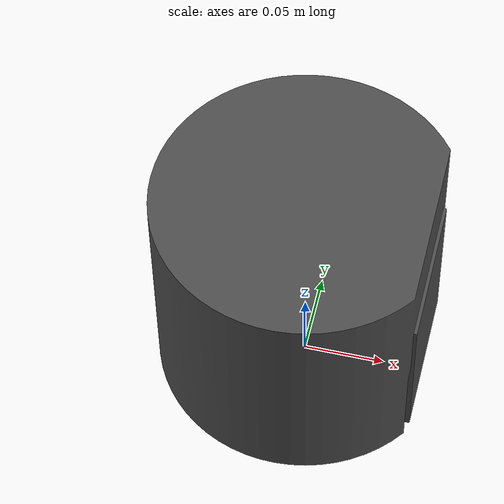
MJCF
<mujoco model="robot">
    <compiler angle="degree" coordinate="local" autolimits="true"/>
    <option timestep="0.004" integrator="implicitfast"/>
    <option gravity="0 0 -9.81"/>

    <asset>
        <mesh file="robot_body.stl"/>
    </asset>

    <worldbody>
        <!-- Robot Base -->
        <body name="robot_base" pos="0 0 0.01">

            <joint name="x_pos" type="slide" axis="1 0 0"/>
            <joint name="y_pos" type="slide" axis="0 1 0"/>
            <joint name="orientation" type="hinge" axis="0 0 1"/>
            <camera name="side" pos="0 -3 1" xyaxes="1 0 0 0 1 2" mode="trackcom"/>
            <geom name="chassis" type="mesh" mesh="robot_body" rgba="0.3 0.3 0.3 1" mass="2" euler="0 0 90"/>
            <geom name="kicker" type="box" size="0.01 0.045 0.05" pos="0.065 0 0.05" rgba="0.3 0.3 0.3 1" mass="0.2"/>
        </body>
    </worldbody>

    <actuator>
        <motor name="orientation_motor" joint="orientation"/>
        <motor name="forward_motor" joint="x_pos"/>
        <motor name="left_motor" joint="y_pos"/>
    </actuator>
</mujoco>
